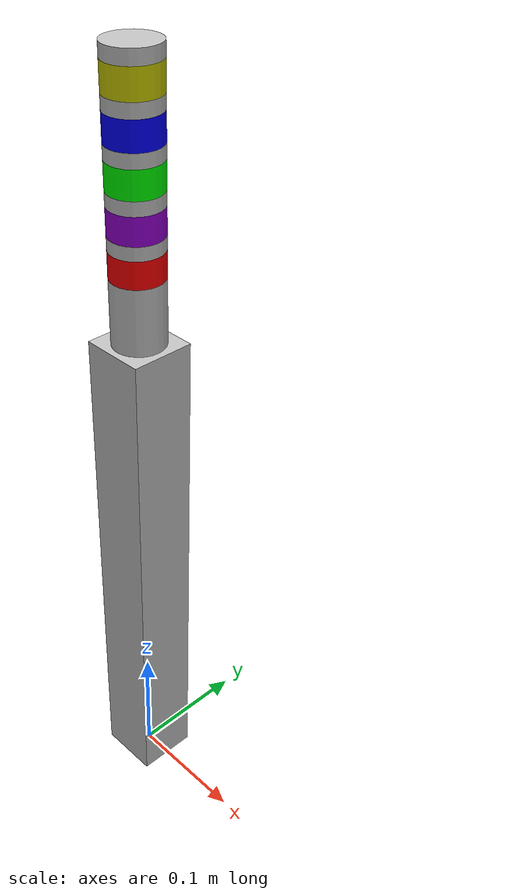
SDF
<?xml version="1.0" ?>
<sdf version="1.11">
  <model name="status_light">

    <static>true</static>

    <link name="base_link">

      <visual name="base_visual">
        <pose>0 0 0.2105 0 0 0</pose>
        <geometry>
          <box>
            <size>0.05 0.05 0.421</size>
          </box>
        </geometry>
        <material>
          <diffuse>0.753 0.753 0.753 1.0</diffuse>
        </material>
      </visual>

      <visual name="base_cylinder">
        <pose>0 0 0.446 0 0 0</pose>
        <geometry>
          <cylinder>
            <radius>0.02</radius>
            <length>0.05</length>
          </cylinder>
        </geometry>
        <material>
          <diffuse>0.753 0.753 0.753 1.0</diffuse>
        </material>
      </visual>

      <visual name="red_light_visual">
        <pose>0 0 0.481 0 0 0</pose>
        <geometry>
          <cylinder>
            <radius>0.02</radius>
            <length>0.02</length>
          </cylinder>
        </geometry>
        <material>
          <diffuse>1.0 0.0 0.0 0.9</diffuse>
        </material>
      </visual>

      <visual name="divider_1">
        <pose>0 0 0.496 0 0 0</pose>
        <geometry>
          <cylinder>
            <radius>0.02</radius>
            <length>0.01</length>
          </cylinder>
        </geometry>
        <material>
          <diffuse>0.753 0.753 0.753 1.0</diffuse>
        </material>
      </visual>

      <visual name="purple_light_visual">
        <pose>0 0 0.511 0 0 0</pose>
        <geometry>
          <cylinder>
            <radius>0.02</radius>
            <length>0.02</length>
          </cylinder>
        </geometry>
        <material>
          <diffuse>0.58 0.0 0.827 0.9</diffuse>
        </material>
      </visual>

      <visual name="divider_2">
        <pose>0 0 0.526 0 0 0</pose>
        <geometry>
          <cylinder>
            <radius>0.02</radius>
            <length>0.01</length>
          </cylinder>
        </geometry>
        <material>
          <diffuse>0.753 0.753 0.753 1.0</diffuse>
        </material>
      </visual>

      <visual name="green_light_visual">
        <pose>0 0 0.541 0 0 0</pose>
        <geometry>
          <cylinder>
            <radius>0.02</radius>
            <length>0.02</length>
          </cylinder>
        </geometry>
        <material>
          <diffuse>0.0 1.0 0.0 0.9</diffuse>
        </material>
      </visual>

      <visual name="divider_3">
        <pose>0 0 0.556 0 0 0</pose>
        <geometry>
          <cylinder>
            <radius>0.02</radius>
            <length>0.01</length>
          </cylinder>
        </geometry>
        <material>
          <diffuse>0.753 0.753 0.753 1.0</diffuse>
        </material>
      </visual>

      <visual name="blue_light_visual">
        <pose>0 0 0.571 0 0 0</pose>
        <geometry>
          <cylinder>
            <radius>0.02</radius>
            <length>0.02</length>
          </cylinder>
        </geometry>
        <material>
          <diffuse>0.0 0.0 1.0 0.9</diffuse>
        </material>
      </visual>

      <visual name="divider_4">
        <pose>0 0 0.586 0 0 0</pose>
        <geometry>
          <cylinder>
            <radius>0.02</radius>
            <length>0.01</length>
          </cylinder>
        </geometry>
        <material>
          <diffuse>0.753 0.753 0.753 1.0</diffuse>
        </material>
      </visual>

      <visual name="yellow_light_visual">
        <pose>0 0 0.601 0 0 0</pose>
        <geometry>
          <cylinder>
            <radius>0.02</radius>
            <length>0.02</length>
          </cylinder>
        </geometry>
        <material>
          <diffuse>0.8 0.8 0.0 0.9</diffuse>
          <emissive>0.8 0.8 0.0 1</emissive>
        </material>
      </visual>

      <visual name="cap">
        <pose>0 0 0.616 0 0 0</pose>
        <geometry>
          <cylinder>
            <radius>0.02</radius>
            <length>0.01</length>
          </cylinder>
        </geometry>
        <material>
          <diffuse>0.753 0.753 0.753 1.0</diffuse>
        </material>
      </visual>

    </link>

    <plugin
      filename="libStatusLightPlugin.so"
      name="ariac_plugins::StatusLightPlugin"/>

  </model>

</sdf>
